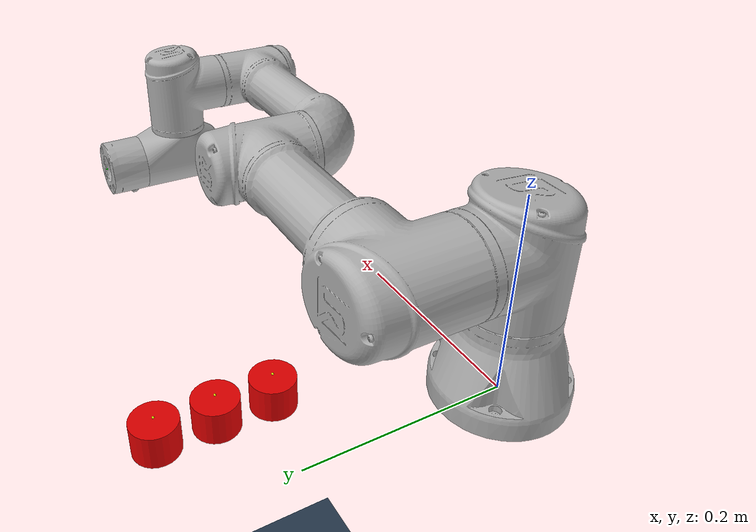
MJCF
<mujoco model="ur3e_push">
    <compiler angle="radian" meshdir="./mesh/ur3e/collision/" texturedir="./mesh/ur3e/visual/" />
    <option collision="predefined" />
    <asset>
        <mesh name="base"     file="base.stl" />
        <mesh name="shoulder" file="shoulder.stl" />
        <mesh name="upperarm" file="upperarm.stl" />
        <mesh name="forearm"  file="forearm.stl" />
        <mesh name="wrist1"   file="wrist1.stl" />
        <mesh name="wrist2"   file="wrist2.stl" />
        <mesh name="wrist3"   file="wrist3.stl" />
        <mesh name="fish"     file="../../fish/fish.stl" />
        <texture name="texplane" type="2d" builtin="checker" rgb1=".2 .3 .4" rgb2=".1 0.15 0.2" width="512" height="512"/>
        <material name="MatPlane" reflectance="0.3" texture="texplane" texrepeat="1 1" texuniform="true"/>
    </asset>
    <worldbody>
    <!-- Lights -->
    <light name="light0" diffuse="1 1 1" pos="0 0 3" dir="0 0 -1" castshadow="false"/>
    <light name="light1" diffuse="1 1 1" pos="1 -1 -.1" dir="-1 1 1" castshadow="false"/>
    <light name="light2" diffuse="1 1 1" pos="1.5 0 3"  dir="0 0 -1" castshadow="false"/>
    <!-- Environment -->
    <geom name="floor" pos="0 0 -.913" size="5 5 .125" type="plane" material="MatPlane" condim="3"/>
    <body name="table" pos="0.4 0 0" >
        <geom name="table" pos="0.0 0 0" type="plane" size=".5 .6 0.1" group = "1" rgba=".1 .1 .1 1" />
    </body>
    <!-- Object: scallop 1 -->
    <body name="object1" pos="0.05 0.2 0.045" quat="1 0 0 0" >
        <joint name="object1" type="free" limited="false"/>
        <geom name="object1" type="cylinder" size="0.02 0.015" group="1" rgba=".9 0 0 1"/>
        <site name="object1" pos="0 0 0.0175" quat="0 0 0 1" type="sphere" size="1e-3" group="2" rgba="1 1 0 1" />
    </body>
    <!-- Object: scallop 2 -->
    <body name="object2" pos="0.05 0.25 0.045" quat="1 0 0 0" >
        <joint name="object2" type="free" limited="false"/>
        <geom name="object2" type="cylinder" size="0.02 0.015" group="1" rgba=".9 0 0 1"/>
        <site name="object2" pos="0 0 0.0175" quat="0 0 0 1" type="sphere" size="1e-3" group="2" rgba="1 1 0 1" />
    </body>
    <!-- Object: scallop 3 -->
    <body name="object3" pos="0.05 0.3 0.045" quat="1 0 0 0" >
        <joint name="object3" type="free" limited="false"/>
        <geom name="object3" type="cylinder" size="0.02 0.015" group="1" rgba=".9 0 0 1"/>
        <site name="object3" pos="0 0 0.0175" quat="0 0 0 1" type="sphere" size="1e-3" group="2" rgba="1 1 0 1" />
    </body>
    <!-- Robot -->
    <body name="base" pos="0 0 0">
        <geom type="mesh" contype="0" conaffinity="0" group="1" rgba="0.7 0.7 0.7 1" mesh="base" />
        <geom name="base" type="mesh" rgba="0.7 0.7 0.7 1" mesh="base" />
        <body name="shoulder_link" pos="0 0 0.152">
            <inertial pos="0 0 0" mass="2" diaginertia="0.00809316 0.00809316 0.005625" />
            <joint name="shoulder_pan_joint" pos="0 0 0" axis="0 0 1" limited="false" range="-3.14159 3.14159" />
            <geom type="mesh" contype="0" conaffinity="0" group="1" rgba="0.7 0.7 0.7 1" mesh="shoulder" />
            <geom name="shoulder" type="mesh" rgba="0.7 0.7 0.7 1" mesh="shoulder" />
            <body name="upper_arm_link" pos="0 0.12 0" quat="0.707107 0 0.707107 0">
                <inertial pos="0 0 0.122" mass="3.42" diaginertia="0.0217771 0.0217771 0.00961875" />
                <joint name="shoulder_lift_joint" pos="0 0 0" axis="0 1 0" limited="false" range="-3.14159 3.14159" />
                <geom type="mesh" contype="0" conaffinity="0" group="1" rgba="0.7 0.7 0.7 1" mesh="upperarm" />
                <geom name="upperarm" type="mesh" rgba="0.7 0.7 0.7 1" mesh="upperarm" />
                <body name="forearm_link" pos="0 -0.093 0.244">
                    <inertial pos="0 0 0.1065" mass="1.26" diaginertia="0.00653562 0.00653562 0.00354375" />
                    <joint name="elbow_joint" pos="0 0 0" axis="0 1 0" limited="false" range="-3.14159 3.14159" />
                    <geom type="mesh" contype="0" conaffinity="0" group="1" rgba="0.7 0.7 0.7 1" mesh="forearm" />
                    <geom name="forearm" type="mesh" rgba="0.7 0.7 0.7 1" mesh="forearm" />
                    <body name="wrist_1_link" pos="0 0 0.213" quat="0.707107 0 0.707107 0">
                        <inertial pos="0 0 0" quat="0.5 0.5 -0.5 0.5" mass="0.8" diaginertia="0.00225 0.002085 0.002085" />
                        <joint name="wrist_1_joint" pos="0 0 0" axis="0 1 0" limited="false" range="-3.14159 3.14159" />
                        <geom type="mesh" contype="0" conaffinity="0" group="1" rgba="0.7 0.7 0.7 1" mesh="wrist1" />
                        <geom name="wrist1" type="mesh" rgba="0.7 0.7 0.7 1" mesh="wrist1" />
                        <body name="wrist_2_link" pos="0 0.104 0">
                            <inertial pos="0 0 0" quat="0.5 0.5 -0.5 0.5" mass="0.8" diaginertia="0.00225 0.002085 0.002085" />
                            <joint name="wrist_2_joint" pos="0 0 0" axis="0 0 1" limited="false" range="-3.14159 3.14159" />
                            <geom type="mesh" contype="0" conaffinity="0" group="1" rgba="0.7 0.7 0.7 1" mesh="wrist2" />
                            <geom name="wrist2" type="mesh" rgba="0.7 0.7 0.7 1" mesh="wrist2" />
                            <body name="wrist_3_link" pos="0 0 0.085">
                                <inertial pos="0 0.000233618 0" quat="0.5 0.5 -0.5 0.5" mass="0.351" diaginertia="0.000991097 0.000918909 0.000912204" />
                                <joint name="wrist_3_joint" pos="0 0 0" axis="0 1 0" limited="false" range="-3.14159 3.14159" />
                                <geom type="mesh" contype="0" conaffinity="0" group="1" rgba="0.7 0.7 0.7 1" mesh="wrist3" />
                                <geom name="wrist3" type="mesh" rgba="0.7 0.7 0.7 1" mesh="wrist3" />
                                <geom size="0.005 0.005 0.005" pos="0 0.082 0" quat="0.707107 0 0 0.707107" type="box" />
                                <site name="end_effector" type="sphere" size="1e-3" pos="0 0.0925 0" group="2" rgba="0 1 0 1" />
                            </body>
                        </body>
                    </body>
                </body>
            </body>
        </body>
      </body>
    </worldbody>
    <!-- Actuators -->
    <actuator>
        <velocity ctrllimited="true" ctrlrange="-3.15 3.15" kv="25"  name='shoulder_pan_vel'  joint='shoulder_pan_joint'/>
        <velocity ctrllimited="true" ctrlrange="-3.15 3.15" kv="25"  name='shoulder_lift_vel' joint='shoulder_lift_joint' />
        <velocity ctrllimited="true" ctrlrange="-3.20 3.20" kv="25"  name='forearm_vel'       joint='elbow_joint' />
        <velocity ctrllimited="true" ctrlrange="-3.20 3.20" kv="1"   name='wrist_1_vel'       joint='wrist_1_joint' />
        <velocity ctrllimited="true" ctrlrange="-3.20 3.20" kv="1"   name='wrist_2_vel'       joint='wrist_2_joint'/>
        <velocity ctrllimited="true" ctrlrange="-3.20 3.20" kv="0.5" name='wrist_3_vel'       joint='wrist_3_joint'/>
    </actuator>
    <!-- Contacts -->
    <contact>
        <pair geom1="upperarm"  geom2="table"   />
        <pair geom1="forearm"   geom2="table"   />
        <pair geom1="wrist1"    geom2="table"   />
        <pair geom1="wrist2"    geom2="table"   />
        <pair geom1="wrist3"    geom2="table"   />
        <pair geom1="object1"   geom2="table"   />
        <pair geom1="wrist3"    geom2="object1" />
        <pair geom1="object2"   geom2="table"   />
        <pair geom1="wrist3"    geom2="object2" />
        <pair geom1="object3"   geom2="table"   />
        <pair geom1="wrist3"    geom2="object3" />
    </contact>
    <!-- Key frames -->
    <keyframe>
        <key name="pull_pose_3objects" qpos="0.05 0.2 0.045 1 0 0 0 0.05 0.25 0.045 1 0 0 0 0.06 0.3 0.045 1 0 0 0 0.125 -0.75 1.5 -1 -1 0" />
    </keyframe>
</mujoco>
